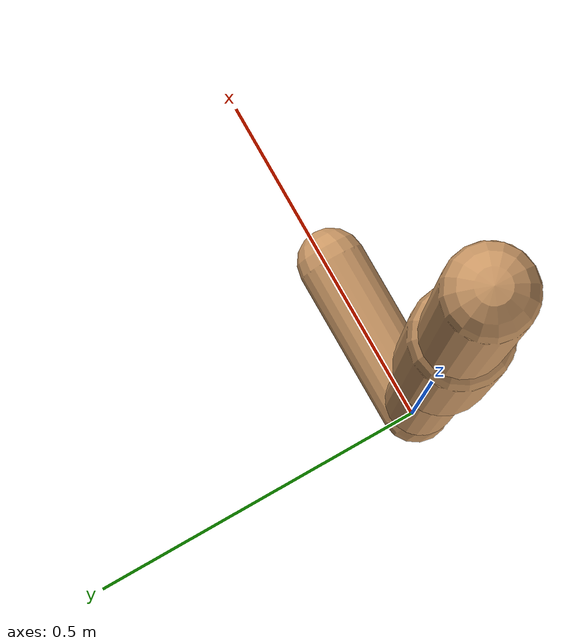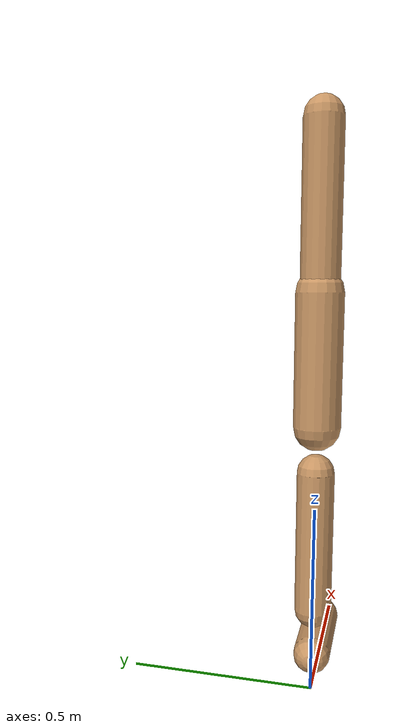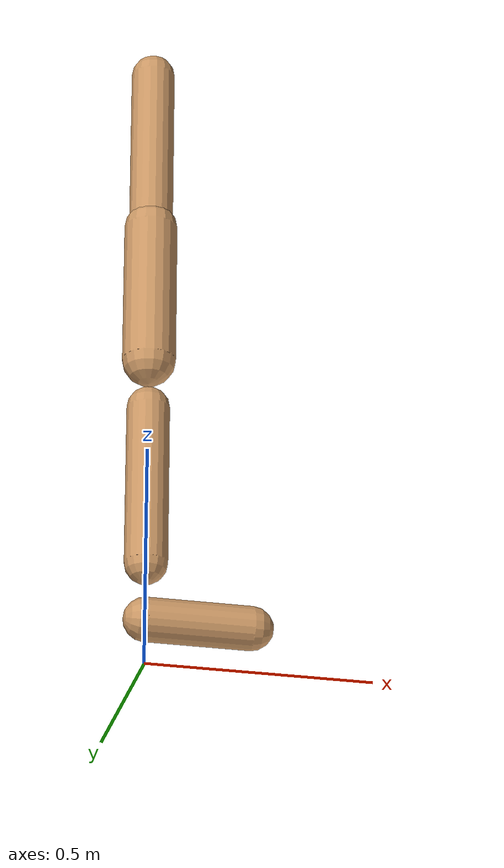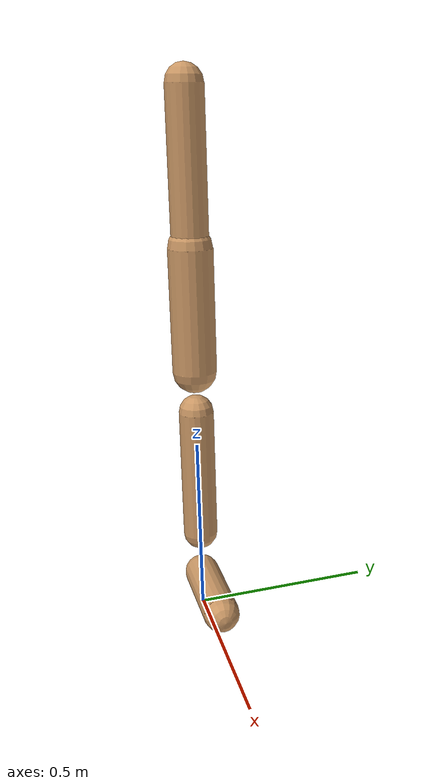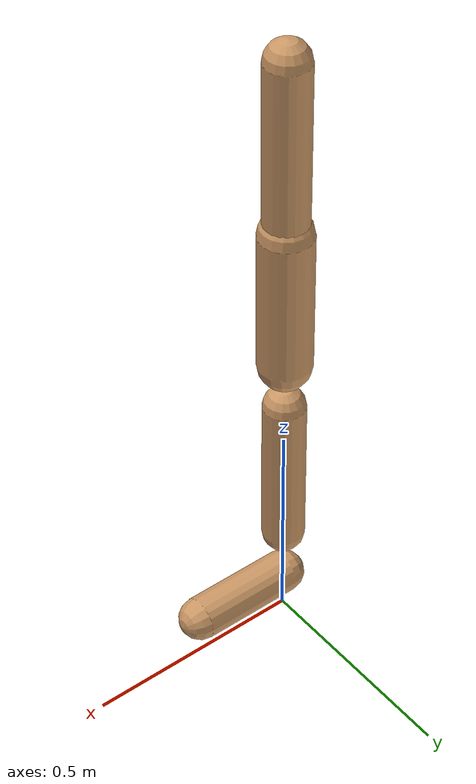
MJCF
<mujoco model="walker2d">
  <compiler angle="degree" coordinate="global" inertiafromgeom="true" />
  <default>
    <joint armature="0.01" damping=".1" limited="true" />
    <geom conaffinity="0" condim="3" contype="1" density="1000" friction="0.8 .1 .1" rgba="0.8 0.6 .4 1" />
  </default>
  <option integrator="RK4" timestep="0.002" />
  <worldbody>

    <body name="torso" pos="0 0 -0.2487358096786053">
      <joint armature="0" axis="1 0 0" damping="0" limited="false" name="ignorex" pos="0 0 0" stiffness="0" type="slide" />
      <joint armature="0" axis="0 0 1" damping="0" limited="false" name="ignorez" pos="0 0 0" ref="1.25" stiffness="0" type="slide" />
      <joint armature="0" axis="0 1 0" damping="0" limited="false" name="ignorey" pos="0 0 0" stiffness="0" type="hinge" />
      <geom fromto="0 0 1.45 0 0 1.05" name="torso_geom" size="0.04939039141444495" type="capsule" />
      <body name="thigh">
        <joint axis="0 -1 0" name="thigh_joint" pos="0 0 1.05" range="-150 0" type="hinge" />
        <geom fromto="0.0 0.0 1.05 0.0 0.0 0.7178222256372341" name="thigh_geom" size="0.059750361500367" type="capsule" />
        <body name="leg" pos="0.0 0.0 0.1178222256372341">
          <joint axis="0 -1 0" name="leg_joint" pos="0 0 0.6" range="-150 0" type="hinge" />
          <geom fromto="0.0 0.0 0.6 0.0 0.0 0.23091358404137122" name="leg_geom" size="0.047800289200293604" type="capsule" />
          <body name="foot" pos="0.0 0.0 0.1309135840413712">
            <joint axis="0 -1 0" name="foot_joint" pos="0 0 0.1" range="-45 45" type="hinge" />
            <geom fromto="-0.0 0.0 0.1 0.2324112709059576 0.0 0.1" name="foot_geom" size="0.04826854798857516" type="capsule" />
          </body>
        </body>
      </body>

      <body name="thigh_left">
        <joint axis="0 -1 0" name="thigh_left_joint" pos="0 0 1.05" range="-150 0" type="hinge" />
        <geom fromto="0.0 0.0 1.05 0.0 0.0 0.7178222256372341" name="thigh_left_geom" rgba=".7 .3 .6 1" size="0.059750361500367" type="capsule" />
        <body name="leg_left" pos="0.0 0.0 0.1178222256372341">
          <joint axis="0 -1 0" name="leg_left_joint" pos="0 0 0.6" range="-150 0" type="hinge" />
          <geom fromto="0.0 0.0 0.6 0.0 0.0 0.23091358404137122" name="leg_left_geom" rgba=".7 .3 .6 1" size="0.047800289200293604" type="capsule" />
          <body name="foot_left" pos="0.0 0.0 0.1309135840413712">
            <joint axis="0 -1 0" name="foot_left_joint" pos="0 0 0.1" range="-45 45" type="hinge" />
            <geom fromto="-0.0 0.0 0.1 0.2324112709059576 0.0 0.1" name="foot_left_geom" rgba=".7 .3 .6 1" size="0.04826854798857516" type="capsule" />
          </body>
        </body>
      </body>
    </body>
  </worldbody>
  <actuator>

    <motor ctrllimited="true" ctrlrange="-1.0 1.0" gear="100" joint="thigh_joint" />
    <motor ctrllimited="true" ctrlrange="-1.0 1.0" gear="100" joint="leg_joint" />
    <motor ctrllimited="true" ctrlrange="-1.0 1.0" gear="100" joint="foot_joint" />
    <motor ctrllimited="true" ctrlrange="-1.0 1.0" gear="100" joint="thigh_left_joint" />
    <motor ctrllimited="true" ctrlrange="-1.0 1.0" gear="100" joint="leg_left_joint" />
    <motor ctrllimited="true" ctrlrange="-1.0 1.0" gear="100" joint="foot_left_joint" />

  </actuator>
</mujoco>
